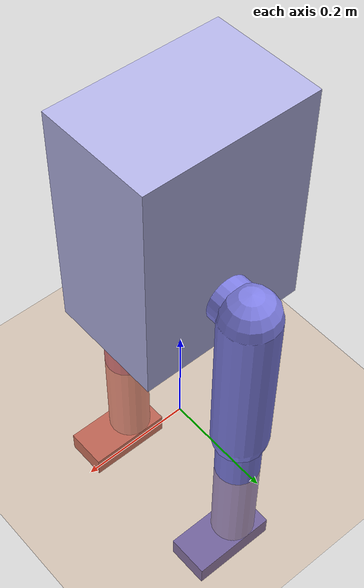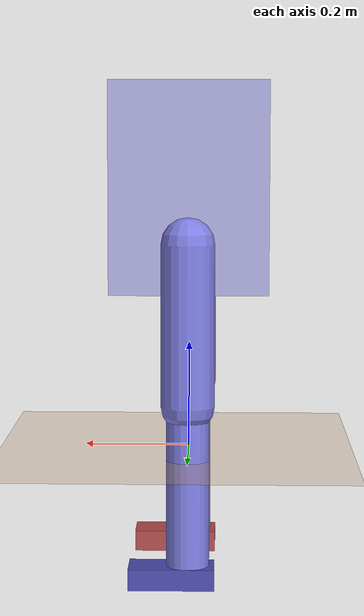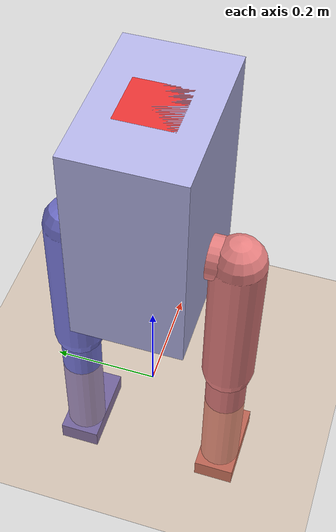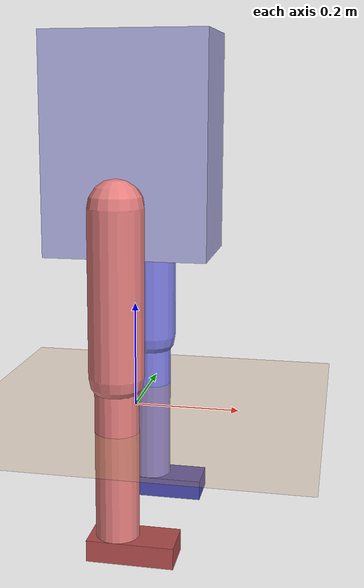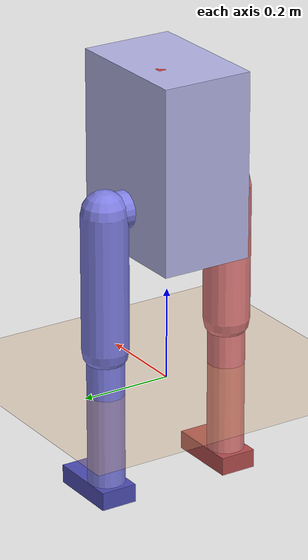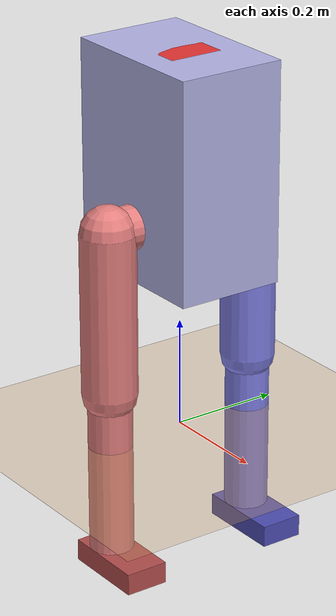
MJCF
<!--
T1机器人MuJoCo模型定义
这是一个简化的双足机器人模型
实际使用时应替换为真实的T1机器人模型
-->

<mujoco model="t1_robot">
  <compiler angle="degree" coordinate="local" inertiafromgeom="true"/>

  <option timestep="0.002" gravity="0 0 -9.81">
    <flag warmstart="enable"/>
  </option>

  <default>
    <joint damping="1" armature="0.01"/>
    <geom contype="1" conaffinity="1" condim="3" friction="1.0 0.005 0.0001" rgba="0.8 0.6 0.4 1"/>
    <motor ctrlrange="-1 1" ctrllimited="true"/>
  </default>

  <asset>
    <texture type="skybox" builtin="gradient" rgb1="0.3 0.5 0.7" rgb2="0 0 0" width="512" height="512"/>
    <texture name="texplane" type="2d" builtin="checker" rgb1="0.2 0.3 0.4" rgb2="0.1 0.2 0.3" width="512" height="512" mark="cross" markrgb="1 1 1"/>
    <material name="matplane" reflectance="0.3" texture="texplane" texrepeat="1 1" texuniform="true"/>
  </asset>

  <worldbody>
    <!-- 地面 -->
    <light directional="true" diffuse="0.6 0.6 0.6" specular="0.2 0.2 0.2" pos="0 0 4" dir="0 0 -1"/>
    <geom name="floor" pos="0 0 0" size="0 0 0.05" type="plane" material="matplane" condim="3"/>

    <!-- 机器人基座（躯干） -->
    <body name="torso" pos="0 0 0.5">
      <camera name="track" mode="trackcom" pos="0 -3 1" xyaxes="1 0 0 0 0.3 1"/>
      <freejoint name="root"/>
      <site name="torso" pos="0 0 0"/>

      <!-- 躯干几何体 -->
      <geom name="torso_geom" type="box" size="0.15 0.1 0.2" rgba="0.7 0.7 0.9 1"/>
      <geom name="torso_imu" type="box" size="0.05 0.05 0.05" pos="0 0 0.15" rgba="0.9 0.2 0.2 1"/>

      <!-- 左髋关节 -->
      <body name="left_hip" pos="0 0.1 -0.1">
        <joint name="left_hip_yaw" type="hinge" axis="0 0 1" range="-45 45" damping="2"/>
        <geom name="left_hip_geom" type="capsule" size="0.04" fromto="0 0 0 0 0.05 0" rgba="0.5 0.5 0.9 1"/>

        <body name="left_thigh" pos="0 0.05 0">
          <joint name="left_hip_roll" type="hinge" axis="1 0 0" range="-30 90" damping="2"/>
          <joint name="left_hip_pitch" type="hinge" axis="0 1 0" range="-120 60" damping="2"/>
          <geom name="left_thigh_geom" type="capsule" size="0.05" fromto="0 0 0 0 0 -0.3" rgba="0.5 0.5 0.9 1"/>

          <!-- 左膝关节 -->
          <body name="left_shin" pos="0 0 -0.3">
            <joint name="left_knee" type="hinge" axis="0 1 0" range="-150 0" damping="1.5"/>
            <geom name="left_shin_geom" type="capsule" size="0.04" fromto="0 0 0 0 0 -0.3" rgba="0.5 0.5 0.9 1"/>

            <!-- 左踝关节 -->
            <body name="left_foot" pos="0 0 -0.3">
              <joint name="left_ankle_pitch" type="hinge" axis="0 1 0" range="-45 45" damping="1"/>
              <joint name="left_ankle_roll" type="hinge" axis="1 0 0" range="-20 20" damping="1"/>
              <geom name="left_foot_geom" type="box" size="0.08 0.04 0.02" pos="0.03 0 -0.02" rgba="0.3 0.3 0.7 1" friction="1.2 0.005 0.0001"/>
            </body>
          </body>
        </body>
      </body>

      <!-- 右髋关节（对称结构） -->
      <body name="right_hip" pos="0 -0.1 -0.1">
        <joint name="right_hip_yaw" type="hinge" axis="0 0 1" range="-45 45" damping="2"/>
        <geom name="right_hip_geom" type="capsule" size="0.04" fromto="0 0 0 0 -0.05 0" rgba="0.9 0.5 0.5 1"/>

        <body name="right_thigh" pos="0 -0.05 0">
          <joint name="right_hip_roll" type="hinge" axis="1 0 0" range="-90 30" damping="2"/>
          <joint name="right_hip_pitch" type="hinge" axis="0 1 0" range="-120 60" damping="2"/>
          <geom name="right_thigh_geom" type="capsule" size="0.05" fromto="0 0 0 0 0 -0.3" rgba="0.9 0.5 0.5 1"/>

          <!-- 右膝关节 -->
          <body name="right_shin" pos="0 0 -0.3">
            <joint name="right_knee" type="hinge" axis="0 1 0" range="-150 0" damping="1.5"/>
            <geom name="right_shin_geom" type="capsule" size="0.04" fromto="0 0 0 0 0 -0.3" rgba="0.9 0.5 0.5 1"/>

            <!-- 右踝关节 -->
            <body name="right_foot" pos="0 0 -0.3">
              <joint name="right_ankle_pitch" type="hinge" axis="0 1 0" range="-45 45" damping="1"/>
              <joint name="right_ankle_roll" type="hinge" axis="1 0 0" range="-20 20" damping="1"/>
              <geom name="right_foot_geom" type="box" size="0.08 0.04 0.02" pos="0.03 0 -0.02" rgba="0.7 0.3 0.3 1" friction="1.2 0.005 0.0001"/>
            </body>
          </body>
        </body>
      </body>
    </body>
  </worldbody>

  <!-- 执行器定义 -->
  <actuator>
    <!-- 左腿执行器 -->
    <motor name="left_hip_yaw_motor" joint="left_hip_yaw" gear="50"/>
    <motor name="left_hip_roll_motor" joint="left_hip_roll" gear="100"/>
    <motor name="left_hip_pitch_motor" joint="left_hip_pitch" gear="150"/>
    <motor name="left_knee_motor" joint="left_knee" gear="150"/>
    <motor name="left_ankle_pitch_motor" joint="left_ankle_pitch" gear="50"/>
    <motor name="left_ankle_roll_motor" joint="left_ankle_roll" gear="50"/>

    <!-- 右腿执行器 -->
    <motor name="right_hip_yaw_motor" joint="right_hip_yaw" gear="50"/>
    <motor name="right_hip_roll_motor" joint="right_hip_roll" gear="100"/>
    <motor name="right_hip_pitch_motor" joint="right_hip_pitch" gear="150"/>
    <motor name="right_knee_motor" joint="right_knee" gear="150"/>
    <motor name="right_ankle_pitch_motor" joint="right_ankle_pitch" gear="50"/>
    <motor name="right_ankle_roll_motor" joint="right_ankle_roll" gear="50"/>
  </actuator>

  <!-- 传感器（可选） -->
  <sensor>
    <framequat name="torso_quat" objtype="body" objname="torso"/>
    <framepos name="torso_pos" objtype="body" objname="torso"/>
    <gyro name="torso_gyro" site="torso"/>
    <accelerometer name="torso_acc" site="torso"/>
  </sensor>
</mujoco>
